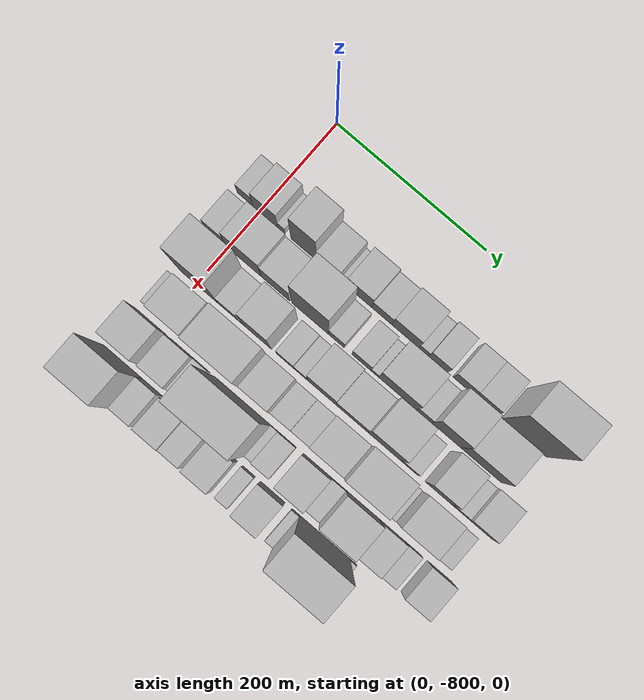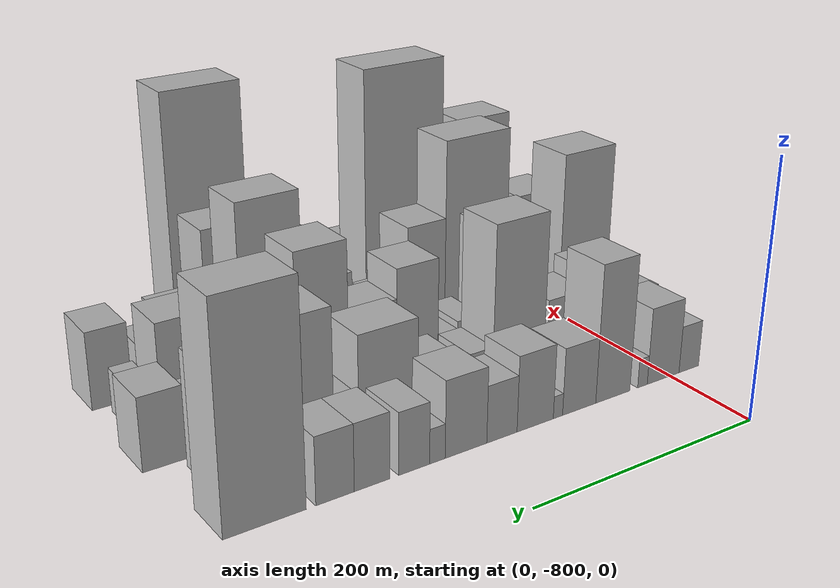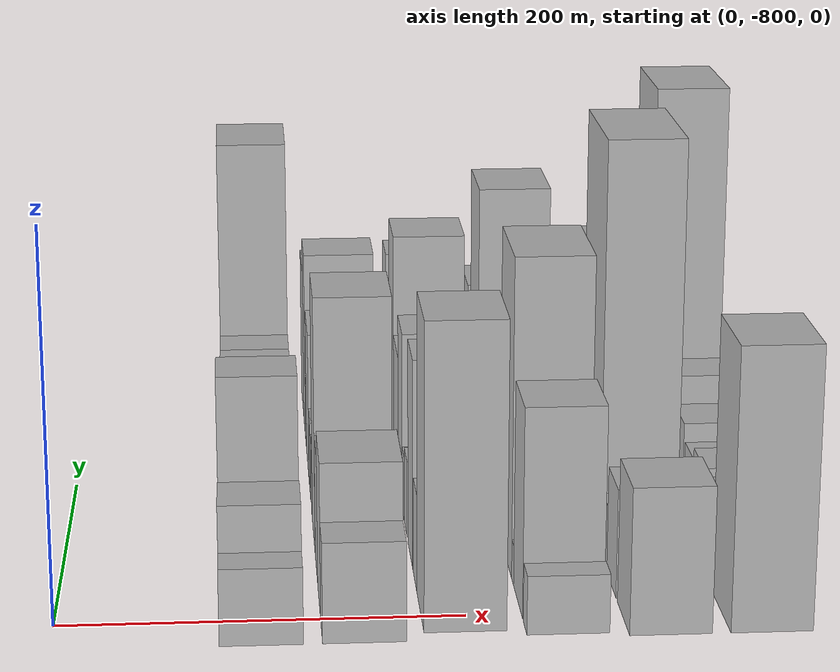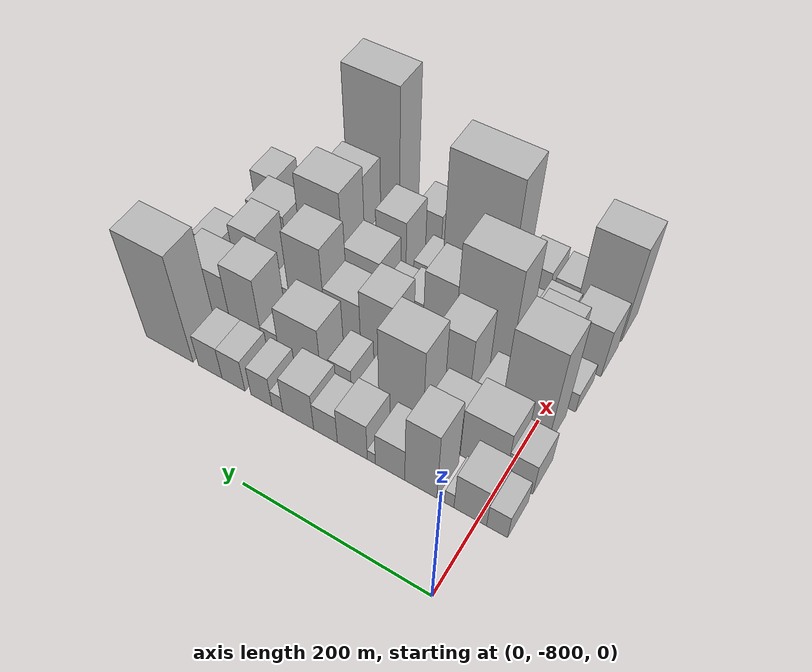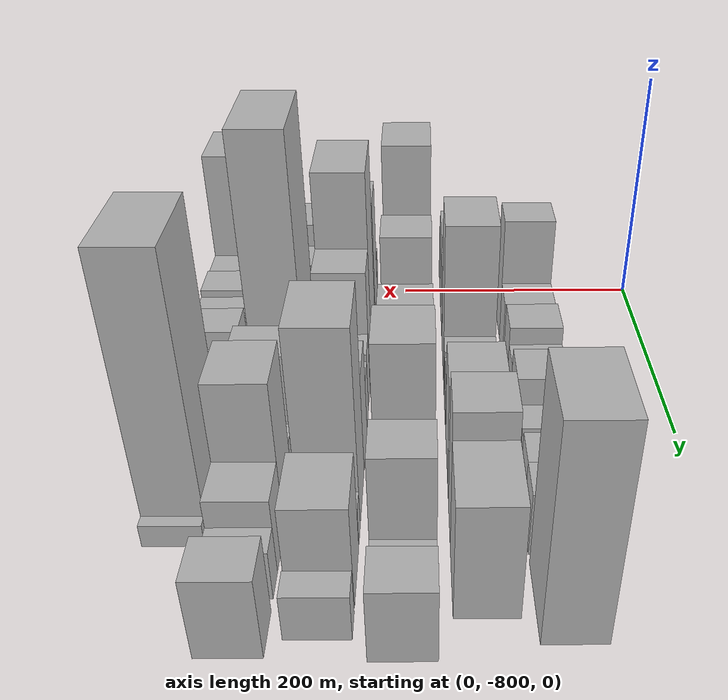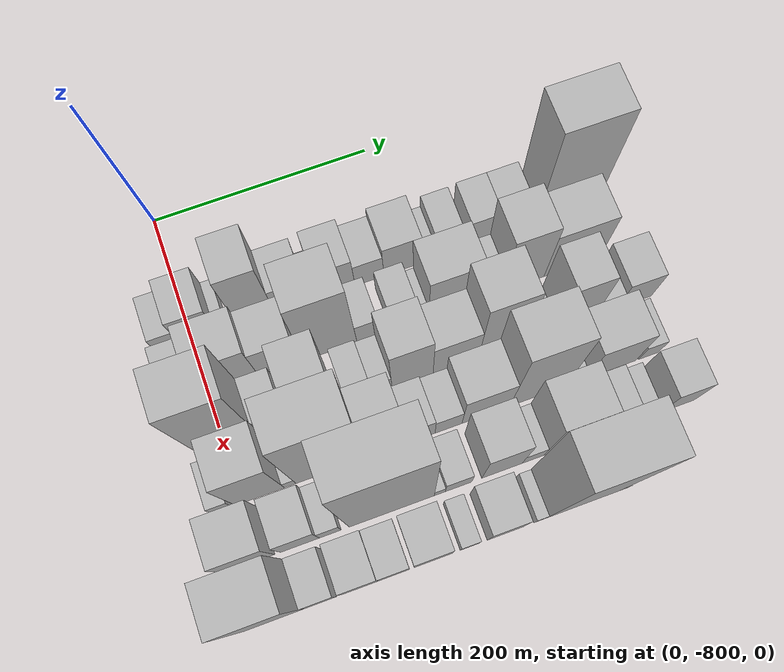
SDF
<sdf version="1.6">
 <world name="default">
  <model name="building_1">
   <static>1</static>
   <pose>100.0000 -819.4514 0 0.000000 0.000000 0.000000</pose>
   <link name="link">
    <pose>0 0 19.50 0 0 0</pose>
    <collision name="collision"><geometry><box><size>40.0000 21.0972 39.0000</size></box></geometry></collision>
    <visual name="visual">
     <cast_shadows>0</cast_shadows>
     <geometry><box><size>40.0000 21.0972 39.0000</size></box></geometry>
     <material>
      <script>
       <uri>model://HANNAS_wall/materials/scripts</uri>
       <uri>model://HANNAS_wall/materials/textures</uri>
       <name>vrc/HANNAS_wall</name>
      </script>
     </material>
    </visual>
   </link>
  </model>
  <model name="building_2">
   <static>1</static>
   <pose>100.0000 -792.2812 0 0.000000 0.000000 0.000000</pose>
   <link name="link">
    <pose>0 0 31.50 0 0 0</pose>
    <collision name="collision"><geometry><box><size>40.0000 33.2433 63.0000</size></box></geometry></collision>
    <visual name="visual">
     <cast_shadows>0</cast_shadows>
     <geometry><box><size>40.0000 33.2433 63.0000</size></box></geometry>
     <material>
      <script>
       <uri>model://HANNAS_wall/materials/scripts</uri>
       <uri>model://HANNAS_wall/materials/textures</uri>
       <name>vrc/HANNAS_wall</name>
      </script>
     </material>
    </visual>
   </link>
  </model>
  <model name="building_3">
   <static>1</static>
   <pose>100.0000 -770.7616 0 0.000000 0.000000 0.000000</pose>
   <link name="link">
    <pose>0 0 12.00 0 0 0</pose>
    <collision name="collision"><geometry><box><size>40.0000 9.7958 24.0000</size></box></geometry></collision>
    <visual name="visual">
     <cast_shadows>0</cast_shadows>
     <geometry><box><size>40.0000 9.7958 24.0000</size></box></geometry>
     <material>
      <script>
       <uri>model://HANNAS_wall/materials/scripts</uri>
       <uri>model://HANNAS_wall/materials/textures</uri>
       <name>vrc/HANNAS_wall</name>
      </script>
     </material>
    </visual>
   </link>
  </model>
  <model name="building_4">
   <static>1</static>
   <pose>100.0000 -740.9503 0 0.000000 0.000000 0.000000</pose>
   <link name="link">
    <pose>0 0 55.50 0 0 0</pose>
    <collision name="collision"><geometry><box><size>40.0000 33.8269 111.0000</size></box></geometry></collision>
    <visual name="visual">
     <cast_shadows>0</cast_shadows>
     <geometry><box><size>40.0000 33.8269 111.0000</size></box></geometry>
     <material>
      <script>
       <uri>model://HANNAS_wall/materials/scripts</uri>
       <uri>model://HANNAS_wall/materials/textures</uri>
       <name>vrc/HANNAS_wall</name>
      </script>
     </material>
    </visual>
   </link>
  </model>
  <model name="building_5">
   <static>1</static>
   <pose>100.0000 -708.1528 0 0.000000 0.000000 0.000000</pose>
   <link name="link">
    <pose>0 0 27.00 0 0 0</pose>
    <collision name="collision"><geometry><box><size>40.0000 31.7680 54.0000</size></box></geometry></collision>
    <visual name="visual">
     <cast_shadows>0</cast_shadows>
     <geometry><box><size>40.0000 31.7680 54.0000</size></box></geometry>
     <material>
      <script>
       <uri>model://HANNAS_wall/materials/scripts</uri>
       <uri>model://HANNAS_wall/materials/textures</uri>
       <name>vrc/HANNAS_wall</name>
      </script>
     </material>
    </visual>
   </link>
  </model>
  <model name="building_6">
   <static>1</static>
   <pose>100.0000 -687.9147 0 0.000000 0.000000 0.000000</pose>
   <link name="link">
    <pose>0 0 9.00 0 0 0</pose>
    <collision name="collision"><geometry><box><size>40.0000 8.7083 18.0000</size></box></geometry></collision>
    <visual name="visual">
     <cast_shadows>0</cast_shadows>
     <geometry><box><size>40.0000 8.7083 18.0000</size></box></geometry>
     <material>
      <script>
       <uri>model://HANNAS_wall/materials/scripts</uri>
       <uri>model://HANNAS_wall/materials/textures</uri>
       <name>vrc/HANNAS_wall</name>
      </script>
     </material>
    </visual>
   </link>
  </model>
  <model name="building_7">
   <static>1</static>
   <pose>100.0000 -666.9556 0 0.000000 0.000000 0.000000</pose>
   <link name="link">
    <pose>0 0 30.00 0 0 0</pose>
    <collision name="collision"><geometry><box><size>40.0000 33.2100 60.0000</size></box></geometry></collision>
    <visual name="visual">
     <cast_shadows>0</cast_shadows>
     <geometry><box><size>40.0000 33.2100 60.0000</size></box></geometry>
     <material>
      <script>
       <uri>model://HANNAS_wall/materials/scripts</uri>
       <uri>model://HANNAS_wall/materials/textures</uri>
       <name>vrc/HANNAS_wall</name>
      </script>
     </material>
    </visual>
   </link>
  </model>
  <model name="building_8">
   <static>1</static>
   <pose>100.0000 -636.9389 0 0.000000 0.000000 0.000000</pose>
   <link name="link">
    <pose>0 0 22.50 0 0 0</pose>
    <collision name="collision"><geometry><box><size>40.0000 26.8234 45.0000</size></box></geometry></collision>
    <visual name="visual">
     <cast_shadows>0</cast_shadows>
     <geometry><box><size>40.0000 26.8234 45.0000</size></box></geometry>
     <material>
      <script>
       <uri>model://HANNAS_wall/materials/scripts</uri>
       <uri>model://HANNAS_wall/materials/textures</uri>
       <name>vrc/HANNAS_wall</name>
      </script>
     </material>
    </visual>
   </link>
  </model>
  <model name="building_9">
   <static>1</static>
   <pose>100.0000 -605.7513 0 0.000000 0.000000 0.000000</pose>
   <link name="link">
    <pose>0 0 30.00 0 0 0</pose>
    <collision name="collision"><geometry><box><size>40.0000 35.5518 60.0000</size></box></geometry></collision>
    <visual name="visual">
     <cast_shadows>0</cast_shadows>
     <geometry><box><size>40.0000 35.5518 60.0000</size></box></geometry>
     <material>
      <script>
       <uri>model://HANNAS_wall/materials/scripts</uri>
       <uri>model://HANNAS_wall/materials/textures</uri>
       <name>vrc/HANNAS_wall</name>
      </script>
     </material>
    </visual>
   </link>
  </model>
  <model name="building_10">
   <static>1</static>
   <pose>100.0000 -581.5288 0 0.000000 0.000000 0.000000</pose>
   <link name="link">
    <pose>0 0 13.50 0 0 0</pose>
    <collision name="collision"><geometry><box><size>40.0000 12.8933 27.0000</size></box></geometry></collision>
    <visual name="visual">
     <cast_shadows>0</cast_shadows>
     <geometry><box><size>40.0000 12.8933 27.0000</size></box></geometry>
     <material>
      <script>
       <uri>model://HANNAS_wall/materials/scripts</uri>
       <uri>model://HANNAS_wall/materials/textures</uri>
       <name>vrc/HANNAS_wall</name>
      </script>
     </material>
    </visual>
   </link>
  </model>
  <model name="building_11">
   <static>1</static>
   <pose>100.0000 -562.5488 0 0.000000 0.000000 0.000000</pose>
   <link name="link">
    <pose>0 0 24.00 0 0 0</pose>
    <collision name="collision"><geometry><box><size>40.0000 25.0665 48.0000</size></box></geometry></collision>
    <visual name="visual">
     <cast_shadows>0</cast_shadows>
     <geometry><box><size>40.0000 25.0665 48.0000</size></box></geometry>
     <material>
      <script>
       <uri>model://HANNAS_wall/materials/scripts</uri>
       <uri>model://HANNAS_wall/materials/textures</uri>
       <name>vrc/HANNAS_wall</name>
      </script>
     </material>
    </visual>
   </link>
  </model>
  <model name="building_12">
   <static>1</static>
   <pose>100.0000 -529.0924 0 0.000000 0.000000 0.000000</pose>
   <link name="link">
    <pose>0 0 25.50 0 0 0</pose>
    <collision name="collision"><geometry><box><size>40.0000 27.8463 51.0000</size></box></geometry></collision>
    <visual name="visual">
     <cast_shadows>0</cast_shadows>
     <geometry><box><size>40.0000 27.8463 51.0000</size></box></geometry>
     <material>
      <script>
       <uri>model://HANNAS_wall/materials/scripts</uri>
       <uri>model://HANNAS_wall/materials/textures</uri>
       <name>vrc/HANNAS_wall</name>
      </script>
     </material>
    </visual>
   </link>
  </model>
  <model name="building_13">
   <static>1</static>
   <pose>100.0000 -500.6283 0 0.000000 0.000000 0.000000</pose>
   <link name="link">
    <pose>0 0 25.50 0 0 0</pose>
    <collision name="collision"><geometry><box><size>40.0000 29.0821 51.0000</size></box></geometry></collision>
    <visual name="visual">
     <cast_shadows>0</cast_shadows>
     <geometry><box><size>40.0000 29.0821 51.0000</size></box></geometry>
     <material>
      <script>
       <uri>model://HANNAS_wall/materials/scripts</uri>
       <uri>model://HANNAS_wall/materials/textures</uri>
       <name>vrc/HANNAS_wall</name>
      </script>
     </material>
    </visual>
   </link>
  </model>
  <model name="building_14">
   <static>1</static>
   <pose>100.0000 -449.3956 0 0.000000 0.000000 0.000000</pose>
   <link name="link">
    <pose>0 0 82.50 0 0 0</pose>
    <collision name="collision"><geometry><box><size>40.0000 59.3832 165.0000</size></box></geometry></collision>
    <visual name="visual">
     <cast_shadows>0</cast_shadows>
     <geometry><box><size>40.0000 59.3832 165.0000</size></box></geometry>
     <material>
      <script>
       <uri>model://HANNAS_wall/materials/scripts</uri>
       <uri>model://HANNAS_wall/materials/textures</uri>
       <name>vrc/HANNAS_wall</name>
      </script>
     </material>
    </visual>
   </link>
  </model>
  <model name="building_50">
   <static>1</static>
   <pose>149.0000 -816.1615 0 0.000000 0.000000 0.000000</pose>
   <link name="link">
    <pose>0 0 25.50 0 0 0</pose>
    <collision name="collision"><geometry><box><size>40.0000 27.6770 51.0000</size></box></geometry></collision>
    <visual name="visual">
     <cast_shadows>0</cast_shadows>
     <geometry><box><size>40.0000 27.6770 51.0000</size></box></geometry>
     <material>
      <script>
       <uri>model://HANNAS_wall/materials/scripts</uri>
       <uri>model://HANNAS_wall/materials/textures</uri>
       <name>vrc/HANNAS_wall</name>
      </script>
     </material>
    </visual>
   </link>
  </model>
  <model name="building_51">
   <static>1</static>
   <pose>149.0000 -778.3763 0 0.000000 0.000000 0.000000</pose>
   <link name="link">
    <pose>0 0 40.50 0 0 0</pose>
    <collision name="collision"><geometry><box><size>40.0000 47.8934 81.0000</size></box></geometry></collision>
    <visual name="visual">
     <cast_shadows>0</cast_shadows>
     <geometry><box><size>40.0000 47.8934 81.0000</size></box></geometry>
     <material>
      <script>
       <uri>model://HANNAS_wall/materials/scripts</uri>
       <uri>model://HANNAS_wall/materials/textures</uri>
       <name>vrc/HANNAS_wall</name>
      </script>
     </material>
    </visual>
   </link>
  </model>
  <model name="building_52">
   <static>1</static>
   <pose>149.0000 -735.7411 0 0.000000 0.000000 0.000000</pose>
   <link name="link">
    <pose>0 0 33.00 0 0 0</pose>
    <collision name="collision"><geometry><box><size>40.0000 37.3771 66.0000</size></box></geometry></collision>
    <visual name="visual">
     <cast_shadows>0</cast_shadows>
     <geometry><box><size>40.0000 37.3771 66.0000</size></box></geometry>
     <material>
      <script>
       <uri>model://HANNAS_wall/materials/scripts</uri>
       <uri>model://HANNAS_wall/materials/textures</uri>
       <name>vrc/HANNAS_wall</name>
      </script>
     </material>
    </visual>
   </link>
  </model>
  <model name="building_53">
   <static>1</static>
   <pose>149.0000 -689.9104 0 0.000000 0.000000 0.000000</pose>
   <link name="link">
    <pose>0 0 69.00 0 0 0</pose>
    <collision name="collision"><geometry><box><size>40.0000 48.2842 138.0000</size></box></geometry></collision>
    <visual name="visual">
     <cast_shadows>0</cast_shadows>
     <geometry><box><size>40.0000 48.2842 138.0000</size></box></geometry>
     <material>
      <script>
       <uri>model://HANNAS_wall/materials/scripts</uri>
       <uri>model://HANNAS_wall/materials/textures</uri>
       <name>vrc/HANNAS_wall</name>
      </script>
     </material>
    </visual>
   </link>
  </model>
  <model name="building_54">
   <static>1</static>
   <pose>149.0000 -655.2119 0 0.000000 0.000000 0.000000</pose>
   <link name="link">
    <pose>0 0 21.00 0 0 0</pose>
    <collision name="collision"><geometry><box><size>40.0000 21.1129 42.0000</size></box></geometry></collision>
    <visual name="visual">
     <cast_shadows>0</cast_shadows>
     <geometry><box><size>40.0000 21.1129 42.0000</size></box></geometry>
     <material>
      <script>
       <uri>model://HANNAS_wall/materials/scripts</uri>
       <uri>model://HANNAS_wall/materials/textures</uri>
       <name>vrc/HANNAS_wall</name>
      </script>
     </material>
    </visual>
   </link>
  </model>
  <model name="building_55">
   <static>1</static>
   <pose>149.0000 -622.0059 0 0.000000 0.000000 0.000000</pose>
   <link name="link">
    <pose>0 0 22.50 0 0 0</pose>
    <collision name="collision"><geometry><box><size>40.0000 25.2990 45.0000</size></box></geometry></collision>
    <visual name="visual">
     <cast_shadows>0</cast_shadows>
     <geometry><box><size>40.0000 25.2990 45.0000</size></box></geometry>
     <material>
      <script>
       <uri>model://HANNAS_wall/materials/scripts</uri>
       <uri>model://HANNAS_wall/materials/textures</uri>
       <name>vrc/HANNAS_wall</name>
      </script>
     </material>
    </visual>
   </link>
  </model>
  <model name="building_56">
   <static>1</static>
   <pose>149.0000 -604.2907 0 0.000000 0.000000 0.000000</pose>
   <link name="link">
    <pose>0 0 10.50 0 0 0</pose>
    <collision name="collision"><geometry><box><size>40.0000 10.1313 21.0000</size></box></geometry></collision>
    <visual name="visual">
     <cast_shadows>0</cast_shadows>
     <geometry><box><size>40.0000 10.1313 21.0000</size></box></geometry>
     <material>
      <script>
       <uri>model://HANNAS_wall/materials/scripts</uri>
       <uri>model://HANNAS_wall/materials/textures</uri>
       <name>vrc/HANNAS_wall</name>
      </script>
     </material>
    </visual>
   </link>
  </model>
  <model name="building_57">
   <static>1</static>
   <pose>149.0000 -574.3360 0 0.000000 0.000000 0.000000</pose>
   <link name="link">
    <pose>0 0 42.00 0 0 0</pose>
    <collision name="collision"><geometry><box><size>40.0000 49.7782 84.0000</size></box></geometry></collision>
    <visual name="visual">
     <cast_shadows>0</cast_shadows>
     <geometry><box><size>40.0000 49.7782 84.0000</size></box></geometry>
     <material>
      <script>
       <uri>model://HANNAS_wall/materials/scripts</uri>
       <uri>model://HANNAS_wall/materials/textures</uri>
       <name>vrc/HANNAS_wall</name>
      </script>
     </material>
    </visual>
   </link>
  </model>
  <model name="building_58">
   <static>1</static>
   <pose>149.0000 -539.4927 0 0.000000 0.000000 0.000000</pose>
   <link name="link">
    <pose>0 0 19.50 0 0 0</pose>
    <collision name="collision"><geometry><box><size>40.0000 19.9085 39.0000</size></box></geometry></collision>
    <visual name="visual">
     <cast_shadows>0</cast_shadows>
     <geometry><box><size>40.0000 19.9085 39.0000</size></box></geometry>
     <material>
      <script>
       <uri>model://HANNAS_wall/materials/scripts</uri>
       <uri>model://HANNAS_wall/materials/textures</uri>
       <name>vrc/HANNAS_wall</name>
      </script>
     </material>
    </visual>
   </link>
  </model>
  <model name="building_59">
   <static>1</static>
   <pose>149.0000 -510.3353 0 0.000000 0.000000 0.000000</pose>
   <link name="link">
    <pose>0 0 55.50 0 0 0</pose>
    <collision name="collision"><geometry><box><size>40.0000 38.4062 111.0000</size></box></geometry></collision>
    <visual name="visual">
     <cast_shadows>0</cast_shadows>
     <geometry><box><size>40.0000 38.4062 111.0000</size></box></geometry>
     <material>
      <script>
       <uri>model://HANNAS_wall/materials/scripts</uri>
       <uri>model://HANNAS_wall/materials/textures</uri>
       <name>vrc/HANNAS_wall</name>
      </script>
     </material>
    </visual>
   </link>
  </model>
  <model name="building_60">
   <static>1</static>
   <pose>149.0000 -464.4534 0 0.000000 0.000000 0.000000</pose>
   <link name="link">
    <pose>0 0 45.00 0 0 0</pose>
    <collision name="collision"><geometry><box><size>40.0000 53.3576 90.0000</size></box></geometry></collision>
    <visual name="visual">
     <cast_shadows>0</cast_shadows>
     <geometry><box><size>40.0000 53.3576 90.0000</size></box></geometry>
     <material>
      <script>
       <uri>model://HANNAS_wall/materials/scripts</uri>
       <uri>model://HANNAS_wall/materials/textures</uri>
       <name>vrc/HANNAS_wall</name>
      </script>
     </material>
    </visual>
   </link>
  </model>
  <model name="building_95">
   <static>1</static>
   <pose>198.0000 -794.7257 0 0.000000 0.000000 0.000000</pose>
   <link name="link">
    <pose>0 0 78.00 0 0 0</pose>
    <collision name="collision"><geometry><box><size>40.0000 50.5487 156.0000</size></box></geometry></collision>
    <visual name="visual">
     <cast_shadows>0</cast_shadows>
     <geometry><box><size>40.0000 50.5487 156.0000</size></box></geometry>
     <material>
      <script>
       <uri>model://HANNAS_wall/materials/scripts</uri>
       <uri>model://HANNAS_wall/materials/textures</uri>
       <name>vrc/HANNAS_wall</name>
      </script>
     </material>
    </visual>
   </link>
  </model>
  <model name="building_96">
   <static>1</static>
   <pose>198.0000 -756.1104 0 0.000000 0.000000 0.000000</pose>
   <link name="link">
    <pose>0 0 25.50 0 0 0</pose>
    <collision name="collision"><geometry><box><size>40.0000 26.6818 51.0000</size></box></geometry></collision>
    <visual name="visual">
     <cast_shadows>0</cast_shadows>
     <geometry><box><size>40.0000 26.6818 51.0000</size></box></geometry>
     <material>
      <script>
       <uri>model://HANNAS_wall/materials/scripts</uri>
       <uri>model://HANNAS_wall/materials/textures</uri>
       <name>vrc/HANNAS_wall</name>
      </script>
     </material>
    </visual>
   </link>
  </model>
  <model name="building_97">
   <static>1</static>
   <pose>198.0000 -739.4578 0 0.000000 0.000000 0.000000</pose>
   <link name="link">
    <pose>0 0 7.50 0 0 0</pose>
    <collision name="collision"><geometry><box><size>40.0000 6.6234 15.0000</size></box></geometry></collision>
    <visual name="visual">
     <cast_shadows>0</cast_shadows>
     <geometry><box><size>40.0000 6.6234 15.0000</size></box></geometry>
     <material>
      <script>
       <uri>model://HANNAS_wall/materials/scripts</uri>
       <uri>model://HANNAS_wall/materials/textures</uri>
       <name>vrc/HANNAS_wall</name>
      </script>
     </material>
    </visual>
   </link>
  </model>
  <model name="building_98">
   <static>1</static>
   <pose>198.0000 -717.5313 0 0.000000 0.000000 0.000000</pose>
   <link name="link">
    <pose>0 0 55.50 0 0 0</pose>
    <collision name="collision"><geometry><box><size>40.0000 37.2294 111.0000</size></box></geometry></collision>
    <visual name="visual">
     <cast_shadows>0</cast_shadows>
     <geometry><box><size>40.0000 37.2294 111.0000</size></box></geometry>
     <material>
      <script>
       <uri>model://HANNAS_wall/materials/scripts</uri>
       <uri>model://HANNAS_wall/materials/textures</uri>
       <name>vrc/HANNAS_wall</name>
      </script>
     </material>
    </visual>
   </link>
  </model>
  <model name="building_99">
   <static>1</static>
   <pose>198.0000 -680.4729 0 0.000000 0.000000 0.000000</pose>
   <link name="link">
    <pose>0 0 21.00 0 0 0</pose>
    <collision name="collision"><geometry><box><size>40.0000 22.8874 42.0000</size></box></geometry></collision>
    <visual name="visual">
     <cast_shadows>0</cast_shadows>
     <geometry><box><size>40.0000 22.8874 42.0000</size></box></geometry>
     <material>
      <script>
       <uri>model://HANNAS_wall/materials/scripts</uri>
       <uri>model://HANNAS_wall/materials/textures</uri>
       <name>vrc/HANNAS_wall</name>
      </script>
     </material>
    </visual>
   </link>
  </model>
  <model name="building_100">
   <static>1</static>
   <pose>198.0000 -659.9594 0 0.000000 0.000000 0.000000</pose>
   <link name="link">
    <pose>0 0 18.00 0 0 0</pose>
    <collision name="collision"><geometry><box><size>40.0000 18.1395 36.0000</size></box></geometry></collision>
    <visual name="visual">
     <cast_shadows>0</cast_shadows>
     <geometry><box><size>40.0000 18.1395 36.0000</size></box></geometry>
     <material>
      <script>
       <uri>model://HANNAS_wall/materials/scripts</uri>
       <uri>model://HANNAS_wall/materials/textures</uri>
       <name>vrc/HANNAS_wall</name>
      </script>
     </material>
    </visual>
   </link>
  </model>
  <model name="building_101">
   <static>1</static>
   <pose>198.0000 -632.2601 0 0.000000 0.000000 0.000000</pose>
   <link name="link">
    <pose>0 0 49.50 0 0 0</pose>
    <collision name="collision"><geometry><box><size>40.0000 37.2592 99.0000</size></box></geometry></collision>
    <visual name="visual">
     <cast_shadows>0</cast_shadows>
     <geometry><box><size>40.0000 37.2592 99.0000</size></box></geometry>
     <material>
      <script>
       <uri>model://HANNAS_wall/materials/scripts</uri>
       <uri>model://HANNAS_wall/materials/textures</uri>
       <name>vrc/HANNAS_wall</name>
      </script>
     </material>
    </visual>
   </link>
  </model>
  <model name="building_102">
   <static>1</static>
   <pose>198.0000 -592.7803 0 0.000000 0.000000 0.000000</pose>
   <link name="link">
    <pose>0 0 37.50 0 0 0</pose>
    <collision name="collision"><geometry><box><size>40.0000 41.7004 75.0000</size></box></geometry></collision>
    <visual name="visual">
     <cast_shadows>0</cast_shadows>
     <geometry><box><size>40.0000 41.7004 75.0000</size></box></geometry>
     <material>
      <script>
       <uri>model://HANNAS_wall/materials/scripts</uri>
       <uri>model://HANNAS_wall/materials/textures</uri>
       <name>vrc/HANNAS_wall</name>
      </script>
     </material>
    </visual>
   </link>
  </model>
  <model name="building_103">
   <static>1</static>
   <pose>198.0000 -550.5543 0 0.000000 0.000000 0.000000</pose>
   <link name="link">
    <pose>0 0 66.00 0 0 0</pose>
    <collision name="collision"><geometry><box><size>40.0000 42.7514 132.0000</size></box></geometry></collision>
    <visual name="visual">
     <cast_shadows>0</cast_shadows>
     <geometry><box><size>40.0000 42.7514 132.0000</size></box></geometry>
     <material>
      <script>
       <uri>model://HANNAS_wall/materials/scripts</uri>
       <uri>model://HANNAS_wall/materials/textures</uri>
       <name>vrc/HANNAS_wall</name>
      </script>
     </material>
    </visual>
   </link>
  </model>
  <model name="building_104">
   <static>1</static>
   <pose>198.0000 -517.7776 0 0.000000 0.000000 0.000000</pose>
   <link name="link">
    <pose>0 0 21.00 0 0 0</pose>
    <collision name="collision"><geometry><box><size>40.0000 22.8019 42.0000</size></box></geometry></collision>
    <visual name="visual">
     <cast_shadows>0</cast_shadows>
     <geometry><box><size>40.0000 22.8019 42.0000</size></box></geometry>
     <material>
      <script>
       <uri>model://HANNAS_wall/materials/scripts</uri>
       <uri>model://HANNAS_wall/materials/textures</uri>
       <name>vrc/HANNAS_wall</name>
      </script>
     </material>
    </visual>
   </link>
  </model>
  <model name="building_105">
   <static>1</static>
   <pose>198.0000 -479.6779 0 0.000000 0.000000 0.000000</pose>
   <link name="link">
    <pose>0 0 51.00 0 0 0</pose>
    <collision name="collision"><geometry><box><size>40.0000 33.3976 102.0000</size></box></geometry></collision>
    <visual name="visual">
     <cast_shadows>0</cast_shadows>
     <geometry><box><size>40.0000 33.3976 102.0000</size></box></geometry>
     <material>
      <script>
       <uri>model://HANNAS_wall/materials/scripts</uri>
       <uri>model://HANNAS_wall/materials/textures</uri>
       <name>vrc/HANNAS_wall</name>
      </script>
     </material>
    </visual>
   </link>
  </model>
  <model name="building_106">
   <static>1</static>
   <pose>198.0000 -452.3152 0 0.000000 0.000000 0.000000</pose>
   <link name="link">
    <pose>0 0 19.50 0 0 0</pose>
    <collision name="collision"><geometry><box><size>40.0000 21.3276 39.0000</size></box></geometry></collision>
    <visual name="visual">
     <cast_shadows>0</cast_shadows>
     <geometry><box><size>40.0000 21.3276 39.0000</size></box></geometry>
     <material>
      <script>
       <uri>model://HANNAS_wall/materials/scripts</uri>
       <uri>model://HANNAS_wall/materials/textures</uri>
       <name>vrc/HANNAS_wall</name>
      </script>
     </material>
    </visual>
   </link>
  </model>
  <model name="building_107">
   <static>1</static>
   <pose>198.0000 -425.4901 0 0.000000 0.000000 0.000000</pose>
   <link name="link">
    <pose>0 0 28.50 0 0 0</pose>
    <collision name="collision"><geometry><box><size>40.0000 32.3227 57.0000</size></box></geometry></collision>
    <visual name="visual">
     <cast_shadows>0</cast_shadows>
     <geometry><box><size>40.0000 32.3227 57.0000</size></box></geometry>
     <material>
      <script>
       <uri>model://HANNAS_wall/materials/scripts</uri>
       <uri>model://HANNAS_wall/materials/textures</uri>
       <name>vrc/HANNAS_wall</name>
      </script>
     </material>
    </visual>
   </link>
  </model>
  <model name="building_141">
   <static>1</static>
   <pose>247.0000 -817.4459 0 0.000000 0.000000 0.000000</pose>
   <link name="link">
    <pose>0 0 15.00 0 0 0</pose>
    <collision name="collision"><geometry><box><size>40.0000 17.1083 30.0000</size></box></geometry></collision>
    <visual name="visual">
     <cast_shadows>0</cast_shadows>
     <geometry><box><size>40.0000 17.1083 30.0000</size></box></geometry>
     <material>
      <script>
       <uri>model://HANNAS_wall/materials/scripts</uri>
       <uri>model://HANNAS_wall/materials/textures</uri>
       <name>vrc/HANNAS_wall</name>
      </script>
     </material>
    </visual>
   </link>
  </model>
  <model name="building_142">
   <static>1</static>
   <pose>247.0000 -784.7367 0 0.000000 0.000000 0.000000</pose>
   <link name="link">
    <pose>0 0 54.00 0 0 0</pose>
    <collision name="collision"><geometry><box><size>40.0000 42.3100 108.0000</size></box></geometry></collision>
    <visual name="visual">
     <cast_shadows>0</cast_shadows>
     <geometry><box><size>40.0000 42.3100 108.0000</size></box></geometry>
     <material>
      <script>
       <uri>model://HANNAS_wall/materials/scripts</uri>
       <uri>model://HANNAS_wall/materials/textures</uri>
       <name>vrc/HANNAS_wall</name>
      </script>
     </material>
    </visual>
   </link>
  </model>
  <model name="building_143">
   <static>1</static>
   <pose>247.0000 -758.5365 0 0.000000 0.000000 0.000000</pose>
   <link name="link">
    <pose>0 0 10.50 0 0 0</pose>
    <collision name="collision"><geometry><box><size>40.0000 10.0904 21.0000</size></box></geometry></collision>
    <visual name="visual">
     <cast_shadows>0</cast_shadows>
     <geometry><box><size>40.0000 10.0904 21.0000</size></box></geometry>
     <material>
      <script>
       <uri>model://HANNAS_wall/materials/scripts</uri>
       <uri>model://HANNAS_wall/materials/textures</uri>
       <name>vrc/HANNAS_wall</name>
      </script>
     </material>
    </visual>
   </link>
  </model>
  <model name="building_144">
   <static>1</static>
   <pose>247.0000 -722.8373 0 0.000000 0.000000 0.000000</pose>
   <link name="link">
    <pose>0 0 84.00 0 0 0</pose>
    <collision name="collision"><geometry><box><size>40.0000 61.3078 168.0000</size></box></geometry></collision>
    <visual name="visual">
     <cast_shadows>0</cast_shadows>
     <geometry><box><size>40.0000 61.3078 168.0000</size></box></geometry>
     <material>
      <script>
       <uri>model://HANNAS_wall/materials/scripts</uri>
       <uri>model://HANNAS_wall/materials/textures</uri>
       <name>vrc/HANNAS_wall</name>
      </script>
     </material>
    </visual>
   </link>
  </model>
  <model name="building_145">
   <static>1</static>
   <pose>247.0000 -674.2169 0 0.000000 0.000000 0.000000</pose>
   <link name="link">
    <pose>0 0 52.50 0 0 0</pose>
    <collision name="collision"><geometry><box><size>40.0000 35.9330 105.0000</size></box></geometry></collision>
    <visual name="visual">
     <cast_shadows>0</cast_shadows>
     <geometry><box><size>40.0000 35.9330 105.0000</size></box></geometry>
     <material>
      <script>
       <uri>model://HANNAS_wall/materials/scripts</uri>
       <uri>model://HANNAS_wall/materials/textures</uri>
       <name>vrc/HANNAS_wall</name>
      </script>
     </material>
    </visual>
   </link>
  </model>
  <model name="building_146">
   <static>1</static>
   <pose>247.0000 -643.0860 0 0.000000 0.000000 0.000000</pose>
   <link name="link">
    <pose>0 0 25.50 0 0 0</pose>
    <collision name="collision"><geometry><box><size>40.0000 26.3288 51.0000</size></box></geometry></collision>
    <visual name="visual">
     <cast_shadows>0</cast_shadows>
     <geometry><box><size>40.0000 26.3288 51.0000</size></box></geometry>
     <material>
      <script>
       <uri>model://HANNAS_wall/materials/scripts</uri>
       <uri>model://HANNAS_wall/materials/textures</uri>
       <name>vrc/HANNAS_wall</name>
      </script>
     </material>
    </visual>
   </link>
  </model>
  <model name="building_147">
   <static>1</static>
   <pose>247.0000 -617.7791 0 0.000000 0.000000 0.000000</pose>
   <link name="link">
    <pose>0 0 22.50 0 0 0</pose>
    <collision name="collision"><geometry><box><size>40.0000 24.2850 45.0000</size></box></geometry></collision>
    <visual name="visual">
     <cast_shadows>0</cast_shadows>
     <geometry><box><size>40.0000 24.2850 45.0000</size></box></geometry>
     <material>
      <script>
       <uri>model://HANNAS_wall/materials/scripts</uri>
       <uri>model://HANNAS_wall/materials/textures</uri>
       <name>vrc/HANNAS_wall</name>
      </script>
     </material>
    </visual>
   </link>
  </model>
  <model name="building_148">
   <static>1</static>
   <pose>247.0000 -583.9822 0 0.000000 0.000000 0.000000</pose>
   <link name="link">
    <pose>0 0 40.50 0 0 0</pose>
    <collision name="collision"><geometry><box><size>40.0000 43.3089 81.0000</size></box></geometry></collision>
    <visual name="visual">
     <cast_shadows>0</cast_shadows>
     <geometry><box><size>40.0000 43.3089 81.0000</size></box></geometry>
     <material>
      <script>
       <uri>model://HANNAS_wall/materials/scripts</uri>
       <uri>model://HANNAS_wall/materials/textures</uri>
       <name>vrc/HANNAS_wall</name>
      </script>
     </material>
    </visual>
   </link>
  </model>
  <model name="building_149">
   <static>1</static>
   <pose>247.0000 -536.7538 0 0.000000 0.000000 0.000000</pose>
   <link name="link">
    <pose>0 0 78.00 0 0 0</pose>
    <collision name="collision"><geometry><box><size>40.0000 51.1479 156.0000</size></box></geometry></collision>
    <visual name="visual">
     <cast_shadows>0</cast_shadows>
     <geometry><box><size>40.0000 51.1479 156.0000</size></box></geometry>
     <material>
      <script>
       <uri>model://HANNAS_wall/materials/scripts</uri>
       <uri>model://HANNAS_wall/materials/textures</uri>
       <name>vrc/HANNAS_wall</name>
      </script>
     </material>
    </visual>
   </link>
  </model>
  <model name="building_150">
   <static>1</static>
   <pose>247.0000 -502.8685 0 0.000000 0.000000 0.000000</pose>
   <link name="link">
    <pose>0 0 15.00 0 0 0</pose>
    <collision name="collision"><geometry><box><size>40.0000 16.6227 30.0000</size></box></geometry></collision>
    <visual name="visual">
     <cast_shadows>0</cast_shadows>
     <geometry><box><size>40.0000 16.6227 30.0000</size></box></geometry>
     <material>
      <script>
       <uri>model://HANNAS_wall/materials/scripts</uri>
       <uri>model://HANNAS_wall/materials/textures</uri>
       <name>vrc/HANNAS_wall</name>
      </script>
     </material>
    </visual>
   </link>
  </model>
  <model name="building_151">
   <static>1</static>
   <pose>247.0000 -468.6414 0 0.000000 0.000000 0.000000</pose>
   <link name="link">
    <pose>0 0 40.50 0 0 0</pose>
    <collision name="collision"><geometry><box><size>40.0000 45.8315 81.0000</size></box></geometry></collision>
    <visual name="visual">
     <cast_shadows>0</cast_shadows>
     <geometry><box><size>40.0000 45.8315 81.0000</size></box></geometry>
     <material>
      <script>
       <uri>model://HANNAS_wall/materials/scripts</uri>
       <uri>model://HANNAS_wall/materials/textures</uri>
       <name>vrc/HANNAS_wall</name>
      </script>
     </material>
    </visual>
   </link>
  </model>
  <model name="building_152">
   <static>1</static>
   <pose>247.0000 -433.3652 0 0.000000 0.000000 0.000000</pose>
   <link name="link">
    <pose>0 0 18.00 0 0 0</pose>
    <collision name="collision"><geometry><box><size>40.0000 18.7208 36.0000</size></box></geometry></collision>
    <visual name="visual">
     <cast_shadows>0</cast_shadows>
     <geometry><box><size>40.0000 18.7208 36.0000</size></box></geometry>
     <material>
      <script>
       <uri>model://HANNAS_wall/materials/scripts</uri>
       <uri>model://HANNAS_wall/materials/textures</uri>
       <name>vrc/HANNAS_wall</name>
      </script>
     </material>
    </visual>
   </link>
  </model>
  <model name="building_187">
   <static>1</static>
   <pose>296.0000 -808.9243 0 0.000000 0.000000 0.000000</pose>
   <link name="link">
    <pose>0 0 37.50 0 0 0</pose>
    <collision name="collision"><geometry><box><size>40.0000 42.1515 75.0000</size></box></geometry></collision>
    <visual name="visual">
     <cast_shadows>0</cast_shadows>
     <geometry><box><size>40.0000 42.1515 75.0000</size></box></geometry>
     <material>
      <script>
       <uri>model://HANNAS_wall/materials/scripts</uri>
       <uri>model://HANNAS_wall/materials/textures</uri>
       <name>vrc/HANNAS_wall</name>
      </script>
     </material>
    </visual>
   </link>
  </model>
  <model name="building_188">
   <static>1</static>
   <pose>296.0000 -766.0151 0 0.000000 0.000000 0.000000</pose>
   <link name="link">
    <pose>0 0 28.50 0 0 0</pose>
    <collision name="collision"><geometry><box><size>40.0000 33.6668 57.0000</size></box></geometry></collision>
    <visual name="visual">
     <cast_shadows>0</cast_shadows>
     <geometry><box><size>40.0000 33.6668 57.0000</size></box></geometry>
     <material>
      <script>
       <uri>model://HANNAS_wall/materials/scripts</uri>
       <uri>model://HANNAS_wall/materials/textures</uri>
       <name>vrc/HANNAS_wall</name>
      </script>
     </material>
    </visual>
   </link>
  </model>
  <model name="building_189">
   <static>1</static>
   <pose>296.0000 -739.7986 0 0.000000 0.000000 0.000000</pose>
   <link name="link">
    <pose>0 0 18.00 0 0 0</pose>
    <collision name="collision"><geometry><box><size>40.0000 18.7662 36.0000</size></box></geometry></collision>
    <visual name="visual">
     <cast_shadows>0</cast_shadows>
     <geometry><box><size>40.0000 18.7662 36.0000</size></box></geometry>
     <material>
      <script>
       <uri>model://HANNAS_wall/materials/scripts</uri>
       <uri>model://HANNAS_wall/materials/textures</uri>
       <name>vrc/HANNAS_wall</name>
      </script>
     </material>
    </visual>
   </link>
  </model>
  <model name="building_190">
   <static>1</static>
   <pose>296.0000 -686.1227 0 0.000000 0.000000 0.000000</pose>
   <link name="link">
    <pose>0 0 109.50 0 0 0</pose>
    <collision name="collision"><geometry><box><size>40.0000 74.5855 219.0000</size></box></geometry></collision>
    <visual name="visual">
     <cast_shadows>0</cast_shadows>
     <geometry><box><size>40.0000 74.5855 219.0000</size></box></geometry>
     <material>
      <script>
       <uri>model://HANNAS_wall/materials/scripts</uri>
       <uri>model://HANNAS_wall/materials/textures</uri>
       <name>vrc/HANNAS_wall</name>
      </script>
     </material>
    </visual>
   </link>
  </model>
  <model name="building_191">
   <static>1</static>
   <pose>296.0000 -643.9368 0 0.000000 0.000000 0.000000</pose>
   <link name="link">
    <pose>0 0 12.00 0 0 0</pose>
    <collision name="collision"><geometry><box><size>40.0000 9.7865 24.0000</size></box></geometry></collision>
    <visual name="visual">
     <cast_shadows>0</cast_shadows>
     <geometry><box><size>40.0000 9.7865 24.0000</size></box></geometry>
     <material>
      <script>
       <uri>model://HANNAS_wall/materials/scripts</uri>
       <uri>model://HANNAS_wall/materials/textures</uri>
       <name>vrc/HANNAS_wall</name>
      </script>
     </material>
    </visual>
   </link>
  </model>
  <model name="building_192">
   <static>1</static>
   <pose>296.0000 -627.2737 0 0.000000 0.000000 0.000000</pose>
   <link name="link">
    <pose>0 0 21.00 0 0 0</pose>
    <collision name="collision"><geometry><box><size>40.0000 23.5395 42.0000</size></box></geometry></collision>
    <visual name="visual">
     <cast_shadows>0</cast_shadows>
     <geometry><box><size>40.0000 23.5395 42.0000</size></box></geometry>
     <material>
      <script>
       <uri>model://HANNAS_wall/materials/scripts</uri>
       <uri>model://HANNAS_wall/materials/textures</uri>
       <name>vrc/HANNAS_wall</name>
      </script>
     </material>
    </visual>
   </link>
  </model>
  <model name="building_193">
   <static>1</static>
   <pose>296.0000 -588.4173 0 0.000000 0.000000 0.000000</pose>
   <link name="link">
    <pose>0 0 46.50 0 0 0</pose>
    <collision name="collision"><geometry><box><size>40.0000 36.1733 93.0000</size></box></geometry></collision>
    <visual name="visual">
     <cast_shadows>0</cast_shadows>
     <geometry><box><size>40.0000 36.1733 93.0000</size></box></geometry>
     <material>
      <script>
       <uri>model://HANNAS_wall/materials/scripts</uri>
       <uri>model://HANNAS_wall/materials/textures</uri>
       <name>vrc/HANNAS_wall</name>
      </script>
     </material>
    </visual>
   </link>
  </model>
  <model name="building_194">
   <static>1</static>
   <pose>296.0000 -560.6218 0 0.000000 0.000000 0.000000</pose>
   <link name="link">
    <pose>0 0 18.00 0 0 0</pose>
    <collision name="collision"><geometry><box><size>40.0000 19.4177 36.0000</size></box></geometry></collision>
    <visual name="visual">
     <cast_shadows>0</cast_shadows>
     <geometry><box><size>40.0000 19.4177 36.0000</size></box></geometry>
     <material>
      <script>
       <uri>model://HANNAS_wall/materials/scripts</uri>
       <uri>model://HANNAS_wall/materials/textures</uri>
       <name>vrc/HANNAS_wall</name>
      </script>
     </material>
    </visual>
   </link>
  </model>
  <model name="building_195">
   <static>1</static>
   <pose>296.0000 -528.7953 0 0.000000 0.000000 0.000000</pose>
   <link name="link">
    <pose>0 0 60.00 0 0 0</pose>
    <collision name="collision"><geometry><box><size>40.0000 44.2352 120.0000</size></box></geometry></collision>
    <visual name="visual">
     <cast_shadows>0</cast_shadows>
     <geometry><box><size>40.0000 44.2352 120.0000</size></box></geometry>
     <material>
      <script>
       <uri>model://HANNAS_wall/materials/scripts</uri>
       <uri>model://HANNAS_wall/materials/textures</uri>
       <name>vrc/HANNAS_wall</name>
      </script>
     </material>
    </visual>
   </link>
  </model>
  <model name="building_196">
   <static>1</static>
   <pose>296.0000 -489.8471 0 0.000000 0.000000 0.000000</pose>
   <link name="link">
    <pose>0 0 30.00 0 0 0</pose>
    <collision name="collision"><geometry><box><size>40.0000 33.6612 60.0000</size></box></geometry></collision>
    <visual name="visual">
     <cast_shadows>0</cast_shadows>
     <geometry><box><size>40.0000 33.6612 60.0000</size></box></geometry>
     <material>
      <script>
       <uri>model://HANNAS_wall/materials/scripts</uri>
       <uri>model://HANNAS_wall/materials/textures</uri>
       <name>vrc/HANNAS_wall</name>
      </script>
     </material>
    </visual>
   </link>
  </model>
  <model name="building_197">
   <static>1</static>
   <pose>296.0000 -462.9873 0 0.000000 0.000000 0.000000</pose>
   <link name="link">
    <pose>0 0 19.50 0 0 0</pose>
    <collision name="collision"><geometry><box><size>40.0000 20.0584 39.0000</size></box></geometry></collision>
    <visual name="visual">
     <cast_shadows>0</cast_shadows>
     <geometry><box><size>40.0000 20.0584 39.0000</size></box></geometry>
     <material>
      <script>
       <uri>model://HANNAS_wall/materials/scripts</uri>
       <uri>model://HANNAS_wall/materials/textures</uri>
       <name>vrc/HANNAS_wall</name>
      </script>
     </material>
    </visual>
   </link>
  </model>
  <model name="building_198">
   <static>1</static>
   <pose>296.0000 -428.1295 0 0.000000 0.000000 0.000000</pose>
   <link name="link">
    <pose>0 0 31.50 0 0 0</pose>
    <collision name="collision"><geometry><box><size>40.0000 31.6573 63.0000</size></box></geometry></collision>
    <visual name="visual">
     <cast_shadows>0</cast_shadows>
     <geometry><box><size>40.0000 31.6573 63.0000</size></box></geometry>
     <material>
      <script>
       <uri>model://HANNAS_wall/materials/scripts</uri>
       <uri>model://HANNAS_wall/materials/textures</uri>
       <name>vrc/HANNAS_wall</name>
      </script>
     </material>
    </visual>
   </link>
  </model>
  <model name="building_238">
   <static>1</static>
   <pose>345.0000 -803.6334 0 0.000000 0.000000 0.000000</pose>
   <link name="link">
    <pose>0 0 72.00 0 0 0</pose>
    <collision name="collision"><geometry><box><size>40.0000 52.7331 144.0000</size></box></geometry></collision>
    <visual name="visual">
     <cast_shadows>0</cast_shadows>
     <geometry><box><size>40.0000 52.7331 144.0000</size></box></geometry>
     <material>
      <script>
       <uri>model://HANNAS_wall/materials/scripts</uri>
       <uri>model://HANNAS_wall/materials/textures</uri>
       <name>vrc/HANNAS_wall</name>
      </script>
     </material>
    </visual>
   </link>
  </model>
  <model name="building_239">
   <static>1</static>
   <pose>345.0000 -763.9068 0 0.000000 0.000000 0.000000</pose>
   <link name="link">
    <pose>0 0 25.50 0 0 0</pose>
    <collision name="collision"><geometry><box><size>40.0000 26.7201 51.0000</size></box></geometry></collision>
    <visual name="visual">
     <cast_shadows>0</cast_shadows>
     <geometry><box><size>40.0000 26.7201 51.0000</size></box></geometry>
     <material>
      <script>
       <uri>model://HANNAS_wall/materials/scripts</uri>
       <uri>model://HANNAS_wall/materials/textures</uri>
       <name>vrc/HANNAS_wall</name>
      </script>
     </material>
    </visual>
   </link>
  </model>
  <model name="building_240">
   <static>1</static>
   <pose>345.0000 -730.7521 0 0.000000 0.000000 0.000000</pose>
   <link name="link">
    <pose>0 0 27.00 0 0 0</pose>
    <collision name="collision"><geometry><box><size>40.0000 31.5894 54.0000</size></box></geometry></collision>
    <visual name="visual">
     <cast_shadows>0</cast_shadows>
     <geometry><box><size>40.0000 31.5894 54.0000</size></box></geometry>
     <material>
      <script>
       <uri>model://HANNAS_wall/materials/scripts</uri>
       <uri>model://HANNAS_wall/materials/textures</uri>
       <name>vrc/HANNAS_wall</name>
      </script>
     </material>
    </visual>
   </link>
  </model>
  <model name="building_241">
   <static>1</static>
   <pose>345.0000 -701.6213 0 0.000000 0.000000 0.000000</pose>
   <link name="link">
    <pose>0 0 24.00 0 0 0</pose>
    <collision name="collision"><geometry><box><size>40.0000 26.6722 48.0000</size></box></geometry></collision>
    <visual name="visual">
     <cast_shadows>0</cast_shadows>
     <geometry><box><size>40.0000 26.6722 48.0000</size></box></geometry>
     <material>
      <script>
       <uri>model://HANNAS_wall/materials/scripts</uri>
       <uri>model://HANNAS_wall/materials/textures</uri>
       <name>vrc/HANNAS_wall</name>
      </script>
     </material>
    </visual>
   </link>
  </model>
  <model name="building_242">
   <static>1</static>
   <pose>345.0000 -667.7473 0 0.000000 0.000000 0.000000</pose>
   <link name="link">
    <pose>0 0 28.50 0 0 0</pose>
    <collision name="collision"><geometry><box><size>40.0000 33.0758 57.0000</size></box></geometry></collision>
    <visual name="visual">
     <cast_shadows>0</cast_shadows>
     <geometry><box><size>40.0000 33.0758 57.0000</size></box></geometry>
     <material>
      <script>
       <uri>model://HANNAS_wall/materials/scripts</uri>
       <uri>model://HANNAS_wall/materials/textures</uri>
       <name>vrc/HANNAS_wall</name>
      </script>
     </material>
    </visual>
   </link>
  </model>
  <model name="building_243">
   <static>1</static>
   <pose>345.0000 -635.8633 0 0.000000 0.000000 0.000000</pose>
   <link name="link">
    <pose>0 0 15.00 0 0 0</pose>
    <collision name="collision"><geometry><box><size>40.0000 16.6920 30.0000</size></box></geometry></collision>
    <visual name="visual">
     <cast_shadows>0</cast_shadows>
     <geometry><box><size>40.0000 16.6920 30.0000</size></box></geometry>
     <material>
      <script>
       <uri>model://HANNAS_wall/materials/scripts</uri>
       <uri>model://HANNAS_wall/materials/textures</uri>
       <name>vrc/HANNAS_wall</name>
      </script>
     </material>
    </visual>
   </link>
  </model>
  <model name="building_244">
   <static>1</static>
   <pose>345.0000 -604.3913 0 0.000000 0.000000 0.000000</pose>
   <link name="link">
    <pose>0 0 31.50 0 0 0</pose>
    <collision name="collision"><geometry><box><size>40.0000 32.2521 63.0000</size></box></geometry></collision>
    <visual name="visual">
     <cast_shadows>0</cast_shadows>
     <geometry><box><size>40.0000 32.2521 63.0000</size></box></geometry>
     <material>
      <script>
       <uri>model://HANNAS_wall/materials/scripts</uri>
       <uri>model://HANNAS_wall/materials/textures</uri>
       <name>vrc/HANNAS_wall</name>
      </script>
     </material>
    </visual>
   </link>
  </model>
  <model name="building_245">
   <static>1</static>
   <pose>345.0000 -574.0182 0 0.000000 0.000000 0.000000</pose>
   <link name="link">
    <pose>0 0 12.00 0 0 0</pose>
    <collision name="collision"><geometry><box><size>40.0000 10.4941 24.0000</size></box></geometry></collision>
    <visual name="visual">
     <cast_shadows>0</cast_shadows>
     <geometry><box><size>40.0000 10.4941 24.0000</size></box></geometry>
     <material>
      <script>
       <uri>model://HANNAS_wall/materials/scripts</uri>
       <uri>model://HANNAS_wall/materials/textures</uri>
       <name>vrc/HANNAS_wall</name>
      </script>
     </material>
    </visual>
   </link>
  </model>
  <model name="building_246">
   <static>1</static>
   <pose>345.0000 -535.8977 0 0.000000 0.000000 0.000000</pose>
   <link name="link">
    <pose>0 0 106.50 0 0 0</pose>
    <collision name="collision"><geometry><box><size>40.0000 65.7469 213.0000</size></box></geometry></collision>
    <visual name="visual">
     <cast_shadows>0</cast_shadows>
     <geometry><box><size>40.0000 65.7469 213.0000</size></box></geometry>
     <material>
      <script>
       <uri>model://HANNAS_wall/materials/scripts</uri>
       <uri>model://HANNAS_wall/materials/textures</uri>
       <name>vrc/HANNAS_wall</name>
      </script>
     </material>
    </visual>
   </link>
  </model>
  <model name="building_247">
   <static>1</static>
   <pose>345.0000 -498.7521 0 0.000000 0.000000 0.000000</pose>
   <link name="link">
    <pose>0 0 9.00 0 0 0</pose>
    <collision name="collision"><geometry><box><size>40.0000 8.5444 18.0000</size></box></geometry></collision>
    <visual name="visual">
     <cast_shadows>0</cast_shadows>
     <geometry><box><size>40.0000 8.5444 18.0000</size></box></geometry>
     <material>
      <script>
       <uri>model://HANNAS_wall/materials/scripts</uri>
       <uri>model://HANNAS_wall/materials/textures</uri>
       <name>vrc/HANNAS_wall</name>
      </script>
     </material>
    </visual>
   </link>
  </model>
 </world>
</sdf>
